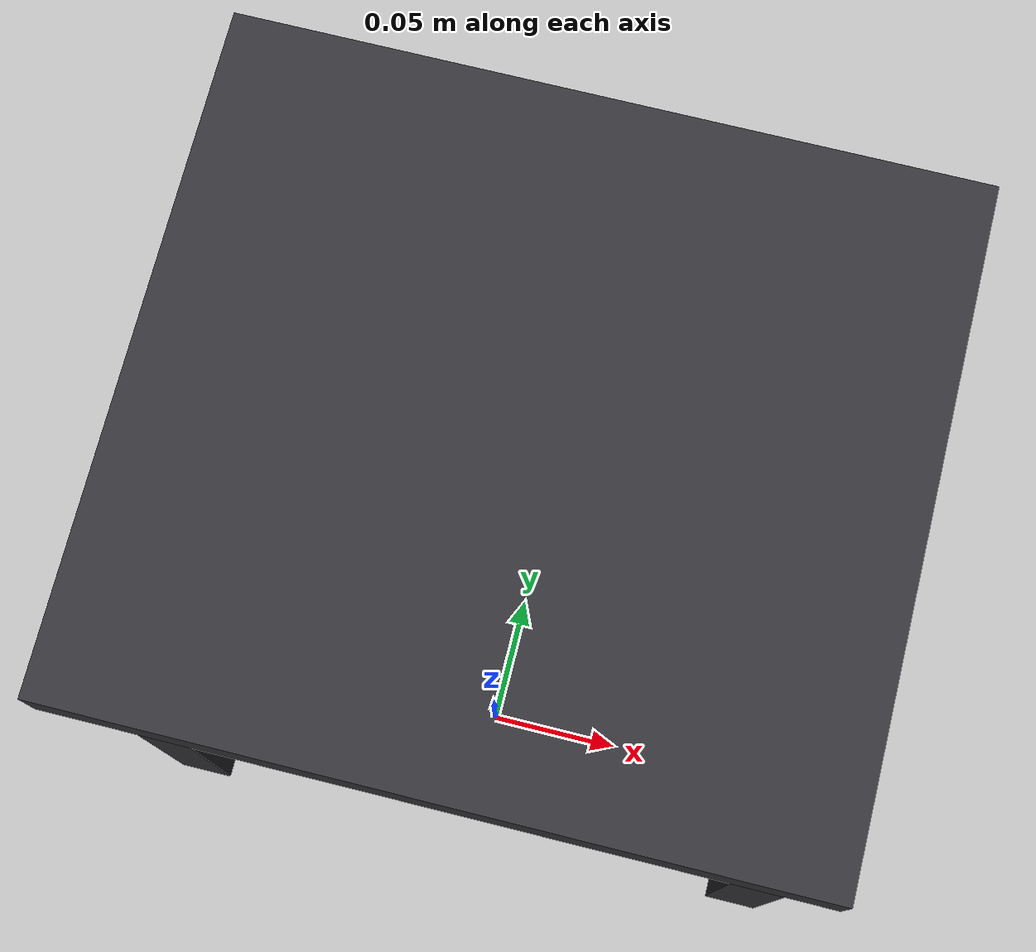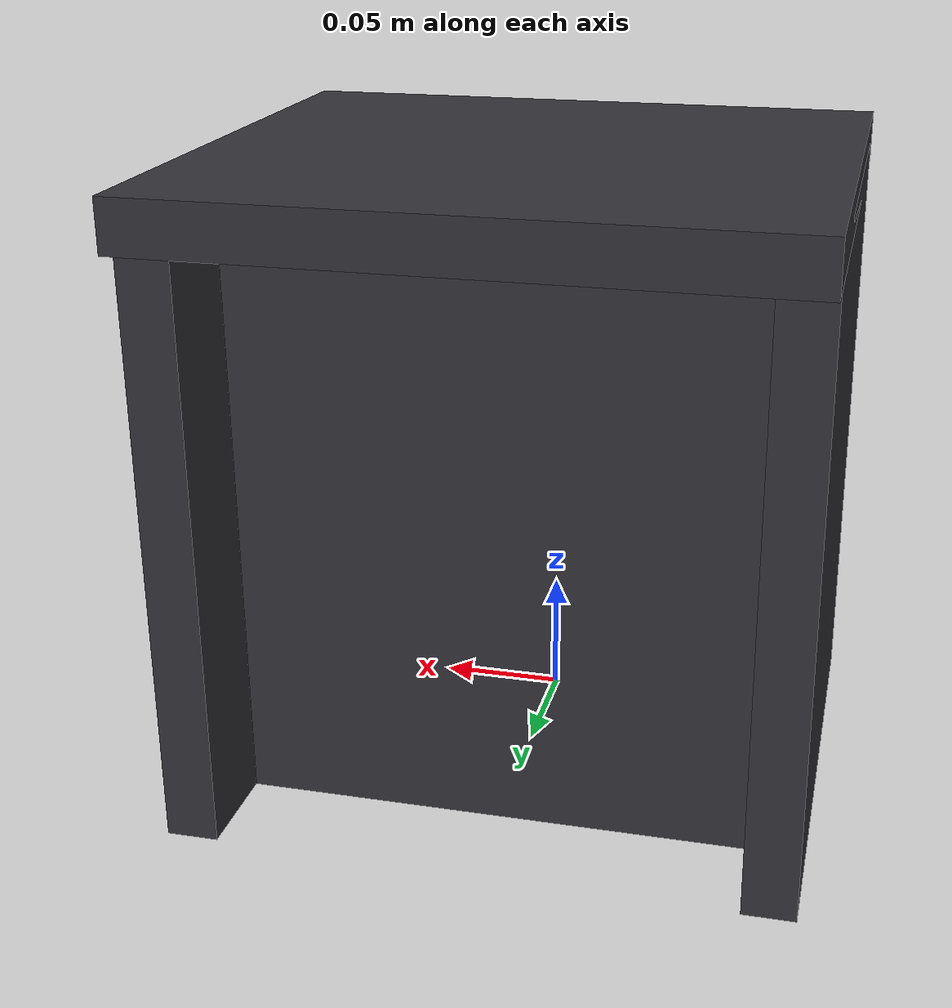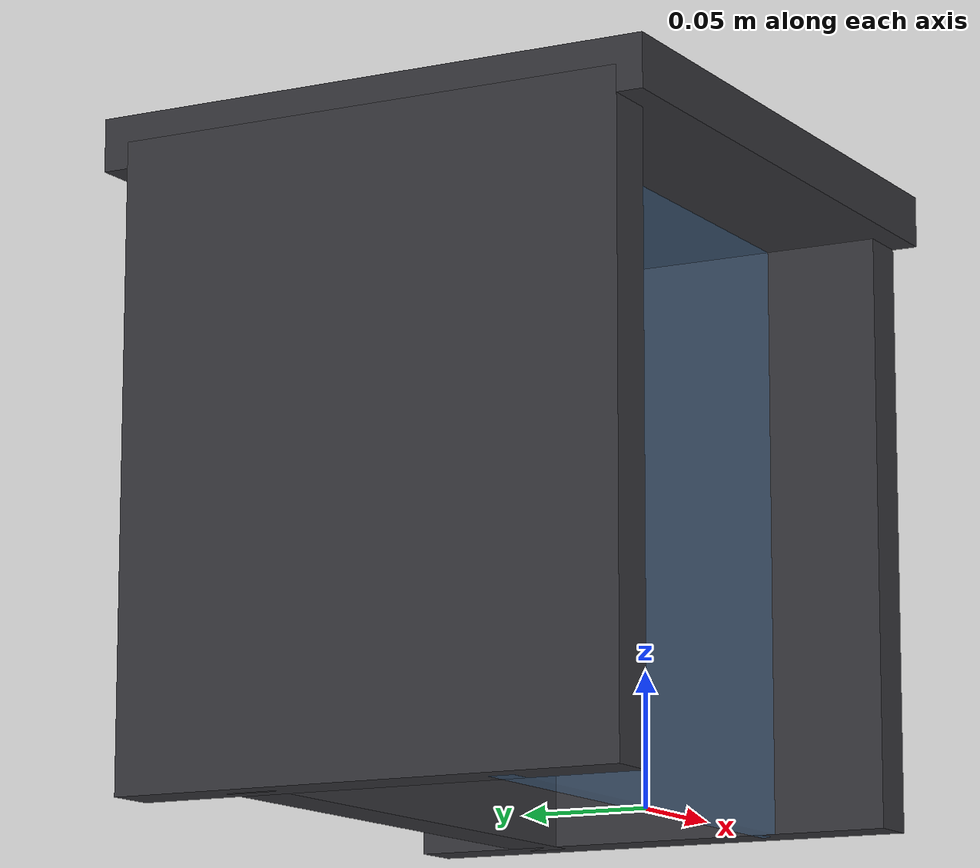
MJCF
<?xml version="1.0" encoding="utf-8"?>
<mujoco model="battery_formation_chamber">
  <compiler angle="radian" autolimits="true"/>
  <default>
    <default class="body"><geom contype="1" conaffinity="1"/></default>
  </default>
  <worldbody>
    <body name="base">
      <geom type="box" size="0.11 0.01 0.12" pos="0 0.10 0.12" rgba="0.2 0.2 0.22 1" class="body"/>
      <geom type="box" size="0.01 0.10 0.12" pos="-0.11 0.05 0.12" rgba="0.2 0.2 0.22 1" class="body"/>
      <geom type="box" size="0.01 0.10 0.12" pos="0.11 0.05 0.12" rgba="0.2 0.2 0.22 1" class="body"/>
      <geom type="box" size="0.12 0.11 0.01" pos="0 0.05 0.24" rgba="0.2 0.2 0.22 1" class="body"/>
      <body name="door" pos="-0.11 0.0 0.12">
        <joint name="door_joint" type="hinge" axis="0 0 1" range="0 1.8" damping="0.6" frictionloss="0.5"/>
  <geom type="box" size="0.11 0.005 0.12" pos="0.11 0 0" rgba="0.3 0.6 0.9 0.3" class="body"/>
      </body>
    </body>
  </worldbody>
</mujoco>
